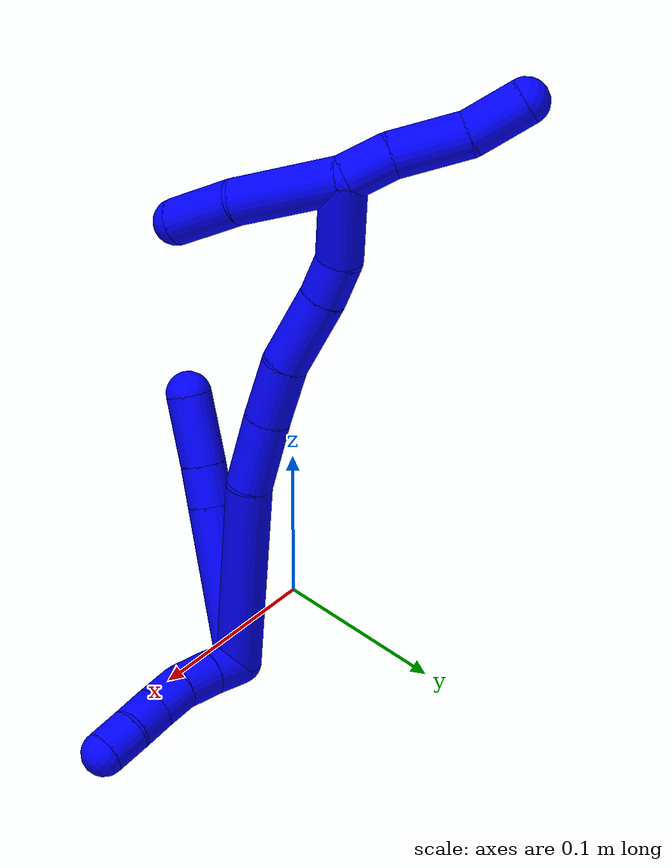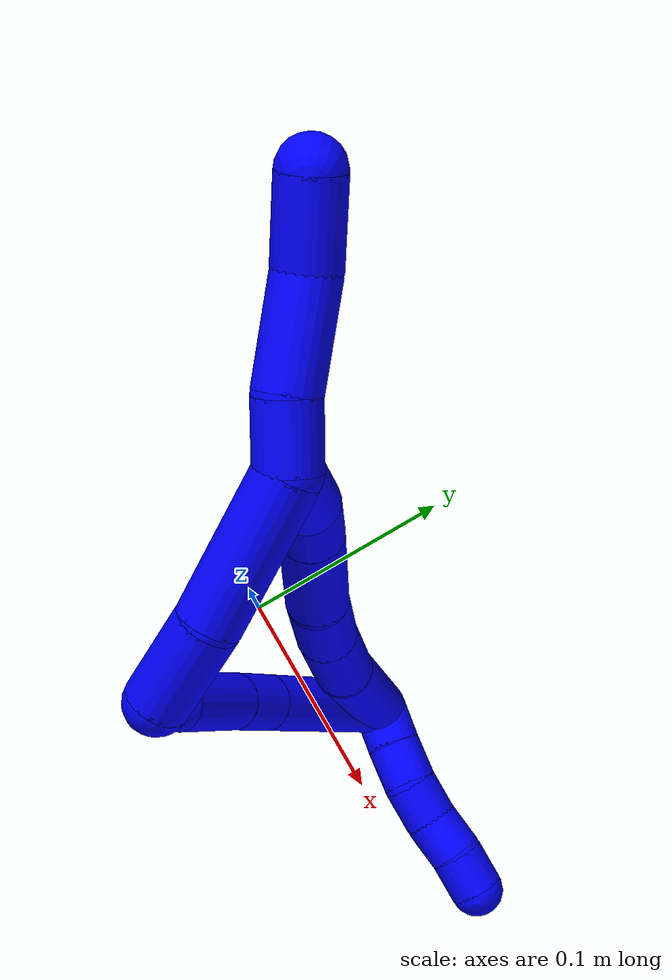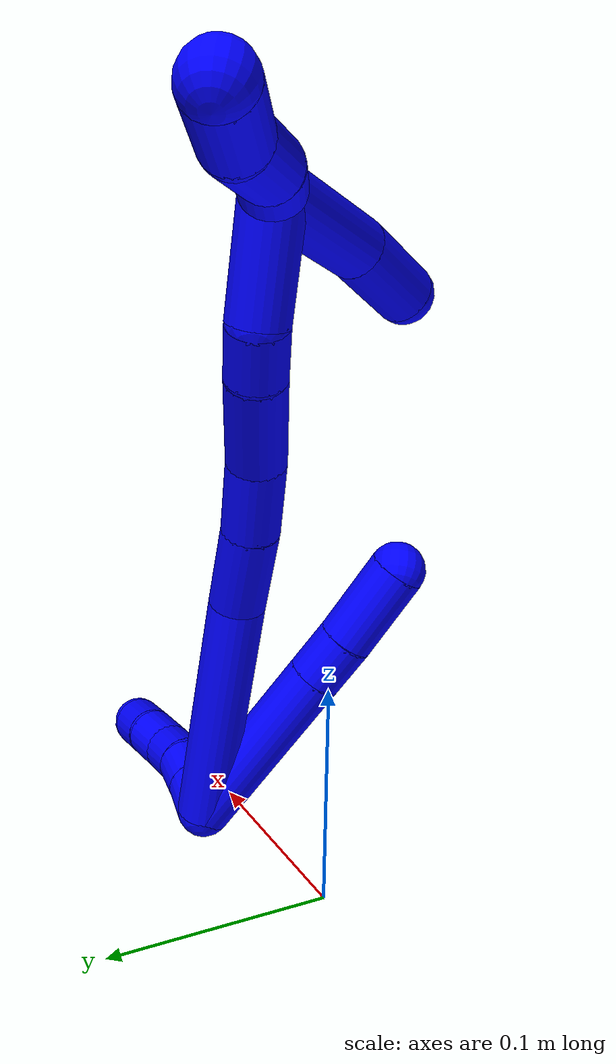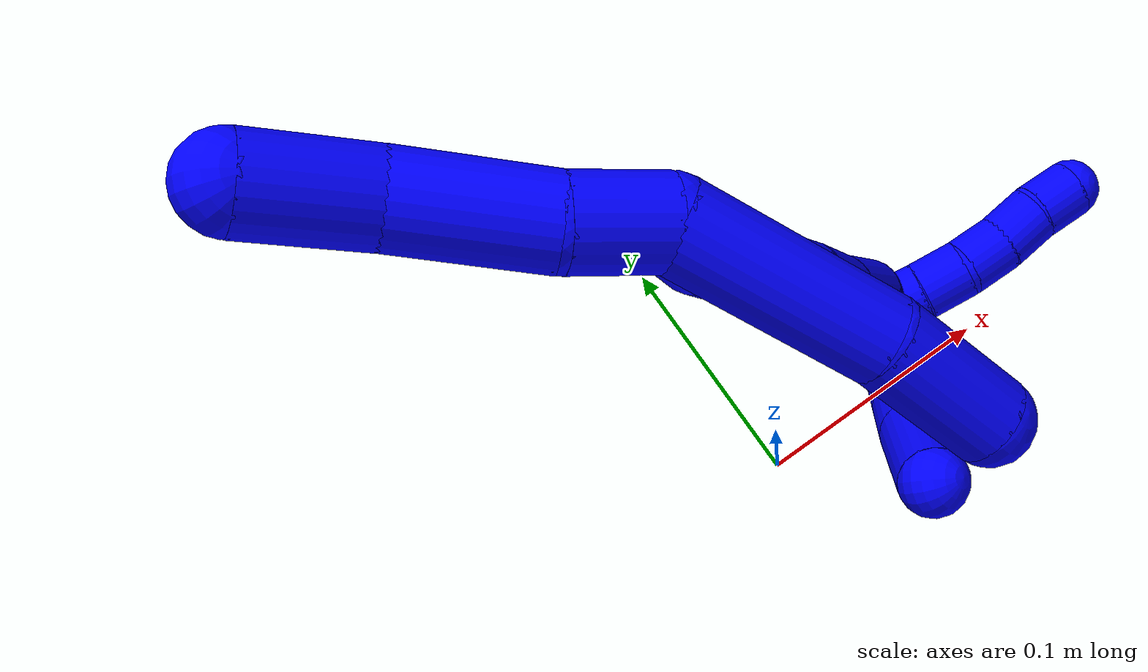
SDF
<sdf version="1.7">
 <world name="default">
  <plugin name="TubeGeneratorPlugin" filename="libtube_generator_plugin.so"/>
  <model name="photoneo_s_sensor">
   <static>1</static>
   <pose>0 0 2 1.57079 1.57079 3.14159</pose>
   <link name="link">
    <inertial><mass>0.1</mass></inertial>
    <sensor name="sensor" type="depth">
     <update_rate>30</update_rate>
     <camera>
      <horizontal_fov>1.22</horizontal_fov>
      <image><width>1920</width><height>1200</height><format>B8G8R8</format></image>
      <clip><near>0.1</near><far>4</far></clip>
      <depth_camera><output>points</output></depth_camera>
     </camera>
     <plugin name="camera_plugin" filename="libgazebo_ros_depth_camera.so">
      <baseline>0.2</baseline>
      <alwaysOn>1</alwaysOn>
      <updateRate>0.0</updateRate>
      <cameraName>camera_ir</cameraName>
      <imageTopicName>/camera/color/image_raw</imageTopicName>
      <cameraInfoTopicName>/camera/color/camera_info</cameraInfoTopicName>
      <depthImageTopicName>/camera/depth/image_raw</depthImageTopicName>
      <depthImageCameraInfoTopicName>/camera/depth/camera_info</depthImageCameraInfoTopicName>
      <pointCloudTopicName>/camera/depth/points</pointCloudTopicName>
      <frameName>fr_optical</frameName>
      <pointCloudCutoff>0.1</pointCloudCutoff>
      <pointCloudCutoffMax>2.0</pointCloudCutoffMax>
      <distortionK1>0</distortionK1>
      <distortionK2>0</distortionK2>
      <distortionK3>0</distortionK3>
      <distortionT1>0</distortionT1>
      <distortionT2>0</distortionT2>
      <CxPrime>0</CxPrime>
      <Cx>0</Cx>
      <Cy>0</Cy>
      <focalLength>0</focalLength>
      <hackBaseline>0</hackBaseline>
     </plugin>
    </sensor>
   </link>
  </model>
  <gravity>0 0 -9.8</gravity>
  <magnetic_field>6e-06 2.3e-05 -4.2e-05</magnetic_field>
  <atmosphere type="adiabatic"/>
  <physics name="default_physics" default="0" type="ode">
   <max_step_size>0.003</max_step_size>
   <real_time_factor>1</real_time_factor>
   <real_time_update_rate>1000</real_time_update_rate>
   <max_contacts>10000</max_contacts>
   <ode>
    <solver>
     <type>quick</type>
     <iters>100</iters>
     <sor>1.3</sor>
     <use_dynamic_moi_rescaling>0</use_dynamic_moi_rescaling>
    </solver>
    <constraints>
     <contact_max_correcting_vel>0</contact_max_correcting_vel>
     <contact_surface_layer>0.001</contact_surface_layer>
     <cfm>0</cfm>
     <erp>0.2</erp>
    </constraints>
   </ode>
  </physics>
  <scene><ambient>0.4 0.4 0.4 1</ambient><background>0.7 0.7 0.7 1</background><shadows>0</shadows></scene>
  <audio><device>default</device></audio>
  <spherical_coordinates>
   <surface_model>EARTH_WGS84</surface_model>
   <latitude_deg>0</latitude_deg>
   <longitude_deg>0</longitude_deg>
   <elevation>0</elevation>
   <heading_deg>0</heading_deg>
  </spherical_coordinates>
  <model name="bin">
   <static>1</static>
   <link name="bottom">
    <collision name="collision-bottom">
     <pose>0 0 -0.01 0 -0 0</pose>
     <geometry><box><size>0.8 0.6 0.02</size></box></geometry>
     <surface>
      <friction><ode><mu>100</mu><mu2>100</mu2></ode></friction>
      <contact><collide_bitmask>65535</collide_bitmask></contact>
     </surface>
    </collision>
   </link>
   <link name="west_wall">
    <collision name="collision-west_wall">
     <pose>-0.41 0 0.1 0 -0 0</pose>
     <geometry><box><size>0.02 0.6 0.2</size></box></geometry>
     <surface>
      <friction><ode><mu>100</mu><mu2>100</mu2></ode></friction>
      <contact><collide_bitmask>65535</collide_bitmask></contact>
     </surface>
    </collision>
   </link>
   <link name="east_wall">
    <collision name="collision-east_wall">
     <pose>0.41 0 0.1 0 -0 0</pose>
     <geometry><box><size>0.02 0.6 0.2</size></box></geometry>
     <surface>
      <friction><ode><mu>100</mu><mu2>100</mu2></ode></friction>
      <contact><collide_bitmask>65535</collide_bitmask></contact>
     </surface>
    </collision>
   </link>
   <link name="south_wall">
    <collision name="collision-south_wall">
     <pose>0 -0.31 0.1 0 -0 0</pose>
     <geometry><box><size>0.8 0.02 0.2</size></box></geometry>
     <surface>
      <friction><ode><mu>100</mu><mu2>100</mu2></ode></friction>
      <contact><collide_bitmask>65535</collide_bitmask></contact>
     </surface>
    </collision>
   </link>
   <link name="north_wall">
    <collision name="collision-north_wall">
     <pose>0 0.31 0.1 0 -0 0</pose>
     <geometry><box><size>0.8 0.02 0.2</size></box></geometry>
     <surface>
      <friction><ode><mu>100</mu><mu2>100</mu2></ode></friction>
      <contact><collide_bitmask>65535</collide_bitmask></contact>
     </surface>
    </collision>
   </link>
  </model>
  <model name="1">
   <static>0</static>
   <link name="1">
    <collision name="collision-cylinder-e_1_2_8">
     <pose>-0.030259 0.018851 0.025655 -0.633681 -0.760001 0.260442</pose>
     <geometry><cylinder><radius>0.0125</radius><length>0.087844</length></cylinder></geometry>
     <surface>
      <friction><ode><mu>1.16</mu><mu2>1.16</mu2><slip1>0</slip1><slip2>0</slip2></ode></friction>
      <contact><ode><kp>1e+06</kp><kd>1</kd><max_vel>0</max_vel><min_depth>0.001</min_depth></ode></contact>
     </surface>
    </collision>
    <visual name="visual-cylinder-e_1_2_8">
     <pose>-0.030259 0.018851 0.025655 -0.633681 -0.760001 0.260442</pose>
     <geometry><cylinder><radius>0.0125</radius><length>0.087844</length></cylinder></geometry>
     <material><ambient>0 0 1 1</ambient></material>
    </visual>
    <collision name="collision-cylinder-e_2_8_9">
     <pose>-0.068425 0.042626 0.05802 -0.633166 -0.759771 0.260132</pose>
     <geometry><cylinder><radius>0.0125</radius><length>0.02296</length></cylinder></geometry>
     <surface>
      <friction><ode><mu>1.16</mu><mu2>1.16</mu2><slip1>0</slip1><slip2>0</slip2></ode></friction>
      <contact><ode><kp>1e+06</kp><kd>1</kd><max_vel>0</max_vel><min_depth>0.001</min_depth></ode></contact>
     </surface>
    </collision>
    <visual name="visual-cylinder-e_2_8_9">
     <pose>-0.068425 0.042626 0.05802 -0.633166 -0.759771 0.260132</pose>
     <geometry><cylinder><radius>0.0125</radius><length>0.02296</length></cylinder></geometry>
     <material><ambient>0 0 1 1</ambient></material>
    </visual>
    <collision name="collision-cylinder-e_3_9_6">
     <pose>-0.089168 0.055978 0.076908 -0.605335 -0.714141 0.23194</pose>
     <geometry><cylinder><radius>0.0125</radius><length>0.039196</length></cylinder></geometry>
     <surface>
      <friction><ode><mu>1.16</mu><mu2>1.16</mu2><slip1>0</slip1><slip2>0</slip2></ode></friction>
      <contact><ode><kp>1e+06</kp><kd>1</kd><max_vel>0</max_vel><min_depth>0.001</min_depth></ode></contact>
     </surface>
    </collision>
    <visual name="visual-cylinder-e_3_9_6">
     <pose>-0.089168 0.055978 0.076908 -0.605335 -0.714141 0.23194</pose>
     <geometry><cylinder><radius>0.0125</radius><length>0.039196</length></cylinder></geometry>
     <material><ambient>0 0 1 1</ambient></material>
    </visual>
    <collision name="collision-cylinder-e_1_2_10">
     <pose>0.005161 -0.003994 0.007577 0.485059 0.542327 0.137343</pose>
     <geometry><cylinder><radius>0.0125</radius><length>0.02</length></cylinder></geometry>
     <surface>
      <friction><ode><mu>1.16</mu><mu2>1.16</mu2><slip1>0</slip1><slip2>0</slip2></ode></friction>
      <contact><ode><kp>1e+06</kp><kd>1</kd><max_vel>0</max_vel><min_depth>0.001</min_depth></ode></contact>
     </surface>
    </collision>
    <visual name="visual-cylinder-e_1_2_10">
     <pose>0.005161 -0.003994 0.007577 0.485059 0.542327 0.137343</pose>
     <geometry><cylinder><radius>0.0125</radius><length>0.02</length></cylinder></geometry>
     <material><ambient>0 0 1 1</ambient></material>
    </visual>
    <collision name="collision-cylinder-e_2_10_11">
     <pose>0.015961 -0.012134 0.022297 0.526044 0.59897 0.165898</pose>
     <geometry><cylinder><radius>0.0125</radius><length>0.02</length></cylinder></geometry>
     <surface>
      <friction><ode><mu>1.16</mu><mu2>1.16</mu2><slip1>0</slip1><slip2>0</slip2></ode></friction>
      <contact><ode><kp>1e+06</kp><kd>1</kd><max_vel>0</max_vel><min_depth>0.001</min_depth></ode></contact>
     </surface>
    </collision>
    <visual name="visual-cylinder-e_2_10_11">
     <pose>0.015961 -0.012134 0.022297 0.526044 0.59897 0.165898</pose>
     <geometry><cylinder><radius>0.0125</radius><length>0.02</length></cylinder></geometry>
     <material><ambient>0 0 1 1</ambient></material>
    </visual>
    <collision name="collision-cylinder-e_3_11_12">
     <pose>0.02847 -0.021137 0.034843 0.732044 0.757626 0.302795</pose>
     <geometry><cylinder><radius>0.0125</radius><length>0.02</length></cylinder></geometry>
     <surface>
      <friction><ode><mu>1.16</mu><mu2>1.16</mu2><slip1>0</slip1><slip2>0</slip2></ode></friction>
      <contact><ode><kp>1e+06</kp><kd>1</kd><max_vel>0</max_vel><min_depth>0.001</min_depth></ode></contact>
     </surface>
    </collision>
    <visual name="visual-cylinder-e_3_11_12">
     <pose>0.02847 -0.021137 0.034843 0.732044 0.757626 0.302795</pose>
     <geometry><cylinder><radius>0.0125</radius><length>0.02</length></cylinder></geometry>
     <material><ambient>0 0 1 1</ambient></material>
    </visual>
    <collision name="collision-cylinder-e_4_12_13">
     <pose>0.042834 -0.029432 0.045907 0.546028 0.846775 0.251038</pose>
     <geometry><cylinder><radius>0.0125</radius><length>0.02</length></cylinder></geometry>
     <surface>
      <friction><ode><mu>1.16</mu><mu2>1.16</mu2><slip1>0</slip1><slip2>0</slip2></ode></friction>
      <contact><ode><kp>1e+06</kp><kd>1</kd><max_vel>0</max_vel><min_depth>0.001</min_depth></ode></contact>
     </surface>
    </collision>
    <visual name="visual-cylinder-e_4_12_13">
     <pose>0.042834 -0.029432 0.045907 0.546028 0.846775 0.251038</pose>
     <geometry><cylinder><radius>0.0125</radius><length>0.02</length></cylinder></geometry>
     <material><ambient>0 0 1 1</ambient></material>
    </visual>
    <collision name="collision-cylinder-e_5_13_5">
     <pose>0.057229 -0.03793 0.056741 0.774182 0.761955 0.323716</pose>
     <geometry><cylinder><radius>0.0125</radius><length>0.02</length></cylinder></geometry>
     <surface>
      <friction><ode><mu>1.16</mu><mu2>1.16</mu2><slip1>0</slip1><slip2>0</slip2></ode></friction>
      <contact><ode><kp>1e+06</kp><kd>1</kd><max_vel>0</max_vel><min_depth>0.001</min_depth></ode></contact>
     </surface>
    </collision>
    <visual name="visual-cylinder-e_5_13_5">
     <pose>0.057229 -0.03793 0.056741 0.774182 0.761955 0.323716</pose>
     <geometry><cylinder><radius>0.0125</radius><length>0.02</length></cylinder></geometry>
     <material><ambient>0 0 1 1</ambient></material>
    </visual>
    <collision name="collision-cylinder-e_1_2_14">
     <pose>-0.018734 0.041704 0.033181 -0.898734 -0.338038 0.164227</pose>
     <geometry><cylinder><radius>0.0125</radius><length>0.112981</length></cylinder></geometry>
     <surface>
      <friction><ode><mu>1.16</mu><mu2>1.16</mu2><slip1>0</slip1><slip2>0</slip2></ode></friction>
      <contact><ode><kp>1e+06</kp><kd>1</kd><max_vel>0</max_vel><min_depth>0.001</min_depth></ode></contact>
     </surface>
    </collision>
    <visual name="visual-cylinder-e_1_2_14">
     <pose>-0.018734 0.041704 0.033181 -0.898734 -0.338038 0.164227</pose>
     <geometry><cylinder><radius>0.0125</radius><length>0.112981</length></cylinder></geometry>
     <material><ambient>0 0 1 1</ambient></material>
    </visual>
    <collision name="collision-cylinder-e_2_14_15">
     <pose>-0.045187 0.099956 0.074624 -1.10767 -0.395333 0.24645</pose>
     <geometry><cylinder><radius>0.0125</radius><length>0.040085</length></cylinder></geometry>
     <surface>
      <friction><ode><mu>1.16</mu><mu2>1.16</mu2><slip1>0</slip1><slip2>0</slip2></ode></friction>
      <contact><ode><kp>1e+06</kp><kd>1</kd><max_vel>0</max_vel><min_depth>0.001</min_depth></ode></contact>
     </surface>
    </collision>
    <visual name="visual-cylinder-e_2_14_15">
     <pose>-0.045187 0.099956 0.074624 -1.10767 -0.395333 0.24645</pose>
     <geometry><cylinder><radius>0.0125</radius><length>0.040085</length></cylinder></geometry>
     <material><ambient>0 0 1 1</ambient></material>
    </visual>
    <collision name="collision-cylinder-e_3_15_16">
     <pose>-0.058327 0.13119 0.089855 -1.12782 -0.321924 0.204647</pose>
     <geometry><cylinder><radius>0.0125</radius><length>0.034269</length></cylinder></geometry>
     <surface>
      <friction><ode><mu>1.16</mu><mu2>1.16</mu2><slip1>0</slip1><slip2>0</slip2></ode></friction>
      <contact><ode><kp>1e+06</kp><kd>1</kd><max_vel>0</max_vel><min_depth>0.001</min_depth></ode></contact>
     </surface>
    </collision>
    <visual name="visual-cylinder-e_3_15_16">
     <pose>-0.058327 0.13119 0.089855 -1.12782 -0.321924 0.204647</pose>
     <geometry><cylinder><radius>0.0125</radius><length>0.034269</length></cylinder></geometry>
     <material><ambient>0 0 1 1</ambient></material>
    </visual>
    <collision name="collision-cylinder-e_4_16_17">
     <pose>-0.069885 0.165934 0.101768 -1.32903 -0.288757 0.22681</pose>
     <geometry><cylinder><radius>0.0125</radius><length>0.043102</length></cylinder></geometry>
     <surface>
      <friction><ode><mu>1.16</mu><mu2>1.16</mu2><slip1>0</slip1><slip2>0</slip2></ode></friction>
      <contact><ode><kp>1e+06</kp><kd>1</kd><max_vel>0</max_vel><min_depth>0.001</min_depth></ode></contact>
     </surface>
    </collision>
    <visual name="visual-cylinder-e_4_16_17">
     <pose>-0.069885 0.165934 0.101768 -1.32903 -0.288757 0.22681</pose>
     <geometry><cylinder><radius>0.0125</radius><length>0.043102</length></cylinder></geometry>
     <material><ambient>0 0 1 1</ambient></material>
    </visual>
    <collision name="collision-cylinder-e_5_17_18">
     <pose>-0.079424 0.196394 0.110545 -1.21795 -0.297716 0.208416</pose>
     <geometry><cylinder><radius>0.0125</radius><length>0.023191</length></cylinder></geometry>
     <surface>
      <friction><ode><mu>1.16</mu><mu2>1.16</mu2><slip1>0</slip1><slip2>0</slip2></ode></friction>
      <contact><ode><kp>1e+06</kp><kd>1</kd><max_vel>0</max_vel><min_depth>0.001</min_depth></ode></contact>
     </surface>
    </collision>
    <visual name="visual-cylinder-e_5_17_18">
     <pose>-0.079424 0.196394 0.110545 -1.21795 -0.297716 0.208416</pose>
     <geometry><cylinder><radius>0.0125</radius><length>0.023191</length></cylinder></geometry>
     <material><ambient>0 0 1 1</ambient></material>
    </visual>
    <collision name="collision-cylinder-e_6_18_1">
     <pose>-0.089601 0.223802 0.128605 -0.874044 -0.296556 0.139334</pose>
     <geometry><cylinder><radius>0.0125</radius><length>0.046372</length></cylinder></geometry>
     <surface>
      <friction><ode><mu>1.16</mu><mu2>1.16</mu2><slip1>0</slip1><slip2>0</slip2></ode></friction>
      <contact><ode><kp>1e+06</kp><kd>1</kd><max_vel>0</max_vel><min_depth>0.001</min_depth></ode></contact>
     </surface>
    </collision>
    <visual name="visual-cylinder-e_6_18_1">
     <pose>-0.089601 0.223802 0.128605 -0.874044 -0.296556 0.139334</pose>
     <geometry><cylinder><radius>0.0125</radius><length>0.046372</length></cylinder></geometry>
     <material><ambient>0 0 1 1</ambient></material>
    </visual>
    <collision name="collision-cylinder-e_1_1_19">
     <pose>-0.102587 0.213036 0.153669 1.19884 -0.205406 -0.140615</pose>
     <geometry><cylinder><radius>0.0125</radius><length>0.060902</length></cylinder></geometry>
     <surface>
      <friction><ode><mu>1.16</mu><mu2>1.16</mu2><slip1>0</slip1><slip2>0</slip2></ode></friction>
      <contact><ode><kp>1e+06</kp><kd>1</kd><max_vel>0</max_vel><min_depth>0.001</min_depth></ode></contact>
     </surface>
    </collision>
    <visual name="visual-cylinder-e_1_1_19">
     <pose>-0.102587 0.213036 0.153669 1.19884 -0.205406 -0.140615</pose>
     <geometry><cylinder><radius>0.0125</radius><length>0.060902</length></cylinder></geometry>
     <material><ambient>0 0 1 1</ambient></material>
    </visual>
    <collision name="collision-cylinder-e_2_19_4">
     <pose>-0.113563 0.166616 0.167926 1.38927 -0.246229 -0.205465</pose>
     <geometry><cylinder><radius>0.0125</radius><length>0.039098</length></cylinder></geometry>
     <surface>
      <friction><ode><mu>1.16</mu><mu2>1.16</mu2><slip1>0</slip1><slip2>0</slip2></ode></friction>
      <contact><ode><kp>1e+06</kp><kd>1</kd><max_vel>0</max_vel><min_depth>0.001</min_depth></ode></contact>
     </surface>
    </collision>
    <visual name="visual-cylinder-e_2_19_4">
     <pose>-0.113563 0.166616 0.167926 1.38927 -0.246229 -0.205465</pose>
     <geometry><cylinder><radius>0.0125</radius><length>0.039098</length></cylinder></geometry>
     <material><ambient>0 0 1 1</ambient></material>
    </visual>
    <collision name="collision-cylinder-e_1_1_20">
     <pose>-0.100034 0.251969 0.136753 -2.06975 -0.280179 0.46624</pose>
     <geometry><cylinder><radius>0.0125</radius><length>0.026452</length></cylinder></geometry>
     <surface>
      <friction><ode><mu>1.16</mu><mu2>1.16</mu2><slip1>0</slip1><slip2>0</slip2></ode></friction>
      <contact><ode><kp>1e+06</kp><kd>1</kd><max_vel>0</max_vel><min_depth>0.001</min_depth></ode></contact>
     </surface>
    </collision>
    <visual name="visual-cylinder-e_1_1_20">
     <pose>-0.100034 0.251969 0.136753 -2.06975 -0.280179 0.46624</pose>
     <geometry><cylinder><radius>0.0125</radius><length>0.026452</length></cylinder></geometry>
     <material><ambient>0 0 1 1</ambient></material>
    </visual>
    <collision name="collision-cylinder-e_2_20_21">
     <pose>-0.105594 0.279926 0.119378 -2.16274 -0.093763 0.175707</pose>
     <geometry><cylinder><radius>0.0125</radius><length>0.040658</length></cylinder></geometry>
     <surface>
      <friction><ode><mu>1.16</mu><mu2>1.16</mu2><slip1>0</slip1><slip2>0</slip2></ode></friction>
      <contact><ode><kp>1e+06</kp><kd>1</kd><max_vel>0</max_vel><min_depth>0.001</min_depth></ode></contact>
     </surface>
    </collision>
    <visual name="visual-cylinder-e_2_20_21">
     <pose>-0.105594 0.279926 0.119378 -2.16274 -0.093763 0.175707</pose>
     <geometry><cylinder><radius>0.0125</radius><length>0.040658</length></cylinder></geometry>
     <material><ambient>0 0 1 1</ambient></material>
    </visual>
    <collision name="collision-cylinder-e_3_21_3">
     <pose>-0.111188 0.311743 0.1025 -1.92673 -0.22634 0.324149</pose>
     <geometry><cylinder><radius>0.0125</radius><length>0.03289</length></cylinder></geometry>
     <surface>
      <friction><ode><mu>1.16</mu><mu2>1.16</mu2><slip1>0</slip1><slip2>0</slip2></ode></friction>
      <contact><ode><kp>1e+06</kp><kd>1</kd><max_vel>0</max_vel><min_depth>0.001</min_depth></ode></contact>
     </surface>
    </collision>
    <visual name="visual-cylinder-e_3_21_3">
     <pose>-0.111188 0.311743 0.1025 -1.92673 -0.22634 0.324149</pose>
     <geometry><cylinder><radius>0.0125</radius><length>0.03289</length></cylinder></geometry>
     <material><ambient>0 0 1 1</ambient></material>
    </visual>
    <collision name="collision-sphere-3">
     <pose>-0.114878 0.326764 0.096916 0 -0 0</pose>
     <geometry><sphere><radius>0.0125</radius></sphere></geometry>
     <surface>
      <friction><ode><mu>1.16</mu><mu2>1.16</mu2><slip1>0</slip1><slip2>0</slip2></ode></friction>
      <contact><ode><kp>1e+06</kp><kd>1</kd><max_vel>0</max_vel><min_depth>0.001</min_depth></ode></contact>
     </surface>
    </collision>
    <visual name="visual-sphere-3">
     <pose>-0.114878 0.326764 0.096916 0 -0 0</pose>
     <geometry><sphere><radius>0.0125</radius></sphere></geometry>
     <material><ambient>0 0 1 1</ambient></material>
    </visual>
    <collision name="collision-sphere-21">
     <pose>-0.107498 0.296722 0.108084 0 -0 0</pose>
     <geometry><sphere><radius>0.0125</radius></sphere></geometry>
     <surface>
      <friction><ode><mu>1.16</mu><mu2>1.16</mu2><slip1>0</slip1><slip2>0</slip2></ode></friction>
      <contact><ode><kp>1e+06</kp><kd>1</kd><max_vel>0</max_vel><min_depth>0.001</min_depth></ode></contact>
     </surface>
    </collision>
    <visual name="visual-sphere-21">
     <pose>-0.107498 0.296722 0.108084 0 -0 0</pose>
     <geometry><sphere><radius>0.0125</radius></sphere></geometry>
     <material><ambient>0 0 1 1</ambient></material>
    </visual>
    <collision name="collision-sphere-20">
     <pose>-0.103691 0.26313 0.130671 0 -0 0</pose>
     <geometry><sphere><radius>0.0125</radius></sphere></geometry>
     <surface>
      <friction><ode><mu>1.16</mu><mu2>1.16</mu2><slip1>0</slip1><slip2>0</slip2></ode></friction>
      <contact><ode><kp>1e+06</kp><kd>1</kd><max_vel>0</max_vel><min_depth>0.001</min_depth></ode></contact>
     </surface>
    </collision>
    <visual name="visual-sphere-20">
     <pose>-0.103691 0.26313 0.130671 0 -0 0</pose>
     <geometry><sphere><radius>0.0125</radius></sphere></geometry>
     <material><ambient>0 0 1 1</ambient></material>
    </visual>
    <collision name="collision-sphere-4">
     <pose>-0.118328 0.147968 0.171349 0 -0 0</pose>
     <geometry><sphere><radius>0.0125</radius></sphere></geometry>
     <surface>
      <friction><ode><mu>1.16</mu><mu2>1.16</mu2><slip1>0</slip1><slip2>0</slip2></ode></friction>
      <contact><ode><kp>1e+06</kp><kd>1</kd><max_vel>0</max_vel><min_depth>0.001</min_depth></ode></contact>
     </surface>
    </collision>
    <visual name="visual-sphere-4">
     <pose>-0.118328 0.147968 0.171349 0 -0 0</pose>
     <geometry><sphere><radius>0.0125</radius></sphere></geometry>
     <material><ambient>0 0 1 1</ambient></material>
    </visual>
    <collision name="collision-sphere-11">
     <pose>0.021598 -0.016281 0.029439 0 -0 0</pose>
     <geometry><sphere><radius>0.0125</radius></sphere></geometry>
     <surface>
      <friction><ode><mu>1.16</mu><mu2>1.16</mu2><slip1>0</slip1><slip2>0</slip2></ode></friction>
      <contact><ode><kp>1e+06</kp><kd>1</kd><max_vel>0</max_vel><min_depth>0.001</min_depth></ode></contact>
     </surface>
    </collision>
    <visual name="visual-sphere-11">
     <pose>0.021598 -0.016281 0.029439 0 -0 0</pose>
     <geometry><sphere><radius>0.0125</radius></sphere></geometry>
     <material><ambient>0 0 1 1</ambient></material>
    </visual>
    <collision name="collision-sphere-10">
     <pose>0.010323 -0.007987 0.015154 0 -0 0</pose>
     <geometry><sphere><radius>0.0125</radius></sphere></geometry>
     <surface>
      <friction><ode><mu>1.16</mu><mu2>1.16</mu2><slip1>0</slip1><slip2>0</slip2></ode></friction>
      <contact><ode><kp>1e+06</kp><kd>1</kd><max_vel>0</max_vel><min_depth>0.001</min_depth></ode></contact>
     </surface>
    </collision>
    <visual name="visual-sphere-10">
     <pose>0.010323 -0.007987 0.015154 0 -0 0</pose>
     <geometry><sphere><radius>0.0125</radius></sphere></geometry>
     <material><ambient>0 0 1 1</ambient></material>
    </visual>
    <collision name="collision-sphere-6">
     <pose>-0.102004 0.064405 0.089086 0 -0 0</pose>
     <geometry><sphere><radius>0.0125</radius></sphere></geometry>
     <surface>
      <friction><ode><mu>1.16</mu><mu2>1.16</mu2><slip1>0</slip1><slip2>0</slip2></ode></friction>
      <contact><ode><kp>1e+06</kp><kd>1</kd><max_vel>0</max_vel><min_depth>0.001</min_depth></ode></contact>
     </surface>
    </collision>
    <visual name="visual-sphere-6">
     <pose>-0.102004 0.064405 0.089086 0 -0 0</pose>
     <geometry><sphere><radius>0.0125</radius></sphere></geometry>
     <material><ambient>0 0 1 1</ambient></material>
    </visual>
    <collision name="collision-sphere-9">
     <pose>-0.076332 0.047551 0.06473 0 -0 0</pose>
     <geometry><sphere><radius>0.0125</radius></sphere></geometry>
     <surface>
      <friction><ode><mu>1.16</mu><mu2>1.16</mu2><slip1>0</slip1><slip2>0</slip2></ode></friction>
      <contact><ode><kp>1e+06</kp><kd>1</kd><max_vel>0</max_vel><min_depth>0.001</min_depth></ode></contact>
     </surface>
    </collision>
    <visual name="visual-sphere-9">
     <pose>-0.076332 0.047551 0.06473 0 -0 0</pose>
     <geometry><sphere><radius>0.0125</radius></sphere></geometry>
     <material><ambient>0 0 1 1</ambient></material>
    </visual>
    <collision name="collision-sphere-2">
     <geometry><sphere><radius>0.0125</radius></sphere></geometry>
     <surface>
      <friction><ode><mu>1.16</mu><mu2>1.16</mu2><slip1>0</slip1><slip2>0</slip2></ode></friction>
      <contact><ode><kp>1e+06</kp><kd>1</kd><max_vel>0</max_vel><min_depth>0.001</min_depth></ode></contact>
     </surface>
    </collision>
    <visual name="visual-sphere-2">
     <geometry><sphere><radius>0.0125</radius></sphere></geometry>
     <material><ambient>0 0 1 1</ambient></material>
    </visual>
    <collision name="collision-sphere-19">
     <pose>-0.108798 0.185263 0.164504 0 -0 0</pose>
     <geometry><sphere><radius>0.0125</radius></sphere></geometry>
     <surface>
      <friction><ode><mu>1.16</mu><mu2>1.16</mu2><slip1>0</slip1><slip2>0</slip2></ode></friction>
      <contact><ode><kp>1e+06</kp><kd>1</kd><max_vel>0</max_vel><min_depth>0.001</min_depth></ode></contact>
     </surface>
    </collision>
    <visual name="visual-sphere-19">
     <pose>-0.108798 0.185263 0.164504 0 -0 0</pose>
     <geometry><sphere><radius>0.0125</radius></sphere></geometry>
     <material><ambient>0 0 1 1</ambient></material>
    </visual>
    <collision name="collision-sphere-8">
     <pose>-0.060518 0.037702 0.051311 0 -0 0</pose>
     <geometry><sphere><radius>0.0125</radius></sphere></geometry>
     <surface>
      <friction><ode><mu>1.16</mu><mu2>1.16</mu2><slip1>0</slip1><slip2>0</slip2></ode></friction>
      <contact><ode><kp>1e+06</kp><kd>1</kd><max_vel>0</max_vel><min_depth>0.001</min_depth></ode></contact>
     </surface>
    </collision>
    <visual name="visual-sphere-8">
     <pose>-0.060518 0.037702 0.051311 0 -0 0</pose>
     <geometry><sphere><radius>0.0125</radius></sphere></geometry>
     <material><ambient>0 0 1 1</ambient></material>
    </visual>
    <collision name="collision-sphere-12">
     <pose>0.035342 -0.025993 0.040246 0 -0 0</pose>
     <geometry><sphere><radius>0.0125</radius></sphere></geometry>
     <surface>
      <friction><ode><mu>1.16</mu><mu2>1.16</mu2><slip1>0</slip1><slip2>0</slip2></ode></friction>
      <contact><ode><kp>1e+06</kp><kd>1</kd><max_vel>0</max_vel><min_depth>0.001</min_depth></ode></contact>
     </surface>
    </collision>
    <visual name="visual-sphere-12">
     <pose>0.035342 -0.025993 0.040246 0 -0 0</pose>
     <geometry><sphere><radius>0.0125</radius></sphere></geometry>
     <material><ambient>0 0 1 1</ambient></material>
    </visual>
    <collision name="collision-sphere-13">
     <pose>0.050325 -0.032872 0.051568 0 -0 0</pose>
     <geometry><sphere><radius>0.0125</radius></sphere></geometry>
     <surface>
      <friction><ode><mu>1.16</mu><mu2>1.16</mu2><slip1>0</slip1><slip2>0</slip2></ode></friction>
      <contact><ode><kp>1e+06</kp><kd>1</kd><max_vel>0</max_vel><min_depth>0.001</min_depth></ode></contact>
     </surface>
    </collision>
    <visual name="visual-sphere-13">
     <pose>0.050325 -0.032872 0.051568 0 -0 0</pose>
     <geometry><sphere><radius>0.0125</radius></sphere></geometry>
     <material><ambient>0 0 1 1</ambient></material>
    </visual>
    <collision name="collision-sphere-5">
     <pose>0.064132 -0.042988 0.061914 0 -0 0</pose>
     <geometry><sphere><radius>0.0125</radius></sphere></geometry>
     <surface>
      <friction><ode><mu>1.16</mu><mu2>1.16</mu2><slip1>0</slip1><slip2>0</slip2></ode></friction>
      <contact><ode><kp>1e+06</kp><kd>1</kd><max_vel>0</max_vel><min_depth>0.001</min_depth></ode></contact>
     </surface>
    </collision>
    <visual name="visual-sphere-5">
     <pose>0.064132 -0.042988 0.061914 0 -0 0</pose>
     <geometry><sphere><radius>0.0125</radius></sphere></geometry>
     <material><ambient>0 0 1 1</ambient></material>
    </visual>
    <collision name="collision-sphere-14">
     <pose>-0.037469 0.083408 0.066361 0 -0 0</pose>
     <geometry><sphere><radius>0.0125</radius></sphere></geometry>
     <surface>
      <friction><ode><mu>1.16</mu><mu2>1.16</mu2><slip1>0</slip1><slip2>0</slip2></ode></friction>
      <contact><ode><kp>1e+06</kp><kd>1</kd><max_vel>0</max_vel><min_depth>0.001</min_depth></ode></contact>
     </surface>
    </collision>
    <visual name="visual-sphere-14">
     <pose>-0.037469 0.083408 0.066361 0 -0 0</pose>
     <geometry><sphere><radius>0.0125</radius></sphere></geometry>
     <material><ambient>0 0 1 1</ambient></material>
    </visual>
    <collision name="collision-sphere-15">
     <pose>-0.052906 0.116505 0.082888 0 -0 0</pose>
     <geometry><sphere><radius>0.0125</radius></sphere></geometry>
     <surface>
      <friction><ode><mu>1.16</mu><mu2>1.16</mu2><slip1>0</slip1><slip2>0</slip2></ode></friction>
      <contact><ode><kp>1e+06</kp><kd>1</kd><max_vel>0</max_vel><min_depth>0.001</min_depth></ode></contact>
     </surface>
    </collision>
    <visual name="visual-sphere-15">
     <pose>-0.052906 0.116505 0.082888 0 -0 0</pose>
     <geometry><sphere><radius>0.0125</radius></sphere></geometry>
     <material><ambient>0 0 1 1</ambient></material>
    </visual>
    <collision name="collision-sphere-16">
     <pose>-0.063748 0.145876 0.096822 0 -0 0</pose>
     <geometry><sphere><radius>0.0125</radius></sphere></geometry>
     <surface>
      <friction><ode><mu>1.16</mu><mu2>1.16</mu2><slip1>0</slip1><slip2>0</slip2></ode></friction>
      <contact><ode><kp>1e+06</kp><kd>1</kd><max_vel>0</max_vel><min_depth>0.001</min_depth></ode></contact>
     </surface>
    </collision>
    <visual name="visual-sphere-16">
     <pose>-0.063748 0.145876 0.096822 0 -0 0</pose>
     <geometry><sphere><radius>0.0125</radius></sphere></geometry>
     <material><ambient>0 0 1 1</ambient></material>
    </visual>
    <collision name="collision-sphere-17">
     <pose>-0.076022 0.185991 0.106714 0 -0 0</pose>
     <geometry><sphere><radius>0.0125</radius></sphere></geometry>
     <surface>
      <friction><ode><mu>1.16</mu><mu2>1.16</mu2><slip1>0</slip1><slip2>0</slip2></ode></friction>
      <contact><ode><kp>1e+06</kp><kd>1</kd><max_vel>0</max_vel><min_depth>0.001</min_depth></ode></contact>
     </surface>
    </collision>
    <visual name="visual-sphere-17">
     <pose>-0.076022 0.185991 0.106714 0 -0 0</pose>
     <geometry><sphere><radius>0.0125</radius></sphere></geometry>
     <material><ambient>0 0 1 1</ambient></material>
    </visual>
    <collision name="collision-sphere-18">
     <pose>-0.082825 0.206797 0.114376 0 -0 0</pose>
     <geometry><sphere><radius>0.0125</radius></sphere></geometry>
     <surface>
      <friction><ode><mu>1.16</mu><mu2>1.16</mu2><slip1>0</slip1><slip2>0</slip2></ode></friction>
      <contact><ode><kp>1e+06</kp><kd>1</kd><max_vel>0</max_vel><min_depth>0.001</min_depth></ode></contact>
     </surface>
    </collision>
    <visual name="visual-sphere-18">
     <pose>-0.082825 0.206797 0.114376 0 -0 0</pose>
     <geometry><sphere><radius>0.0125</radius></sphere></geometry>
     <material><ambient>0 0 1 1</ambient></material>
    </visual>
    <collision name="collision-sphere-1">
     <pose>-0.096376 0.240808 0.142835 0 -0 0</pose>
     <geometry><sphere><radius>0.0125</radius></sphere></geometry>
     <surface>
      <friction><ode><mu>1.16</mu><mu2>1.16</mu2><slip1>0</slip1><slip2>0</slip2></ode></friction>
      <contact><ode><kp>1e+06</kp><kd>1</kd><max_vel>0</max_vel><min_depth>0.001</min_depth></ode></contact>
     </surface>
    </collision>
    <visual name="visual-sphere-1">
     <pose>-0.096376 0.240808 0.142835 0 -0 0</pose>
     <geometry><sphere><radius>0.0125</radius></sphere></geometry>
     <material><ambient>0 0 1 1</ambient></material>
    </visual>
    <inertial>
     <pose>-0.054601 0.114431 0.080596 0 -0 0</pose>
     <mass>0.75</mass>
     <inertia><ixx>0.000264</ixx><ixy>0</ixy><ixz>0</ixz><iyy>0.000227</iyy><iyz>0</iyz><izz>-8e-06</izz></inertia>
    </inertial>
   </link>
   <pose>0.07164 0.026137 0.012033 0.821457 0.160848 0.814194</pose>
  </model>
 </world>
</sdf>
